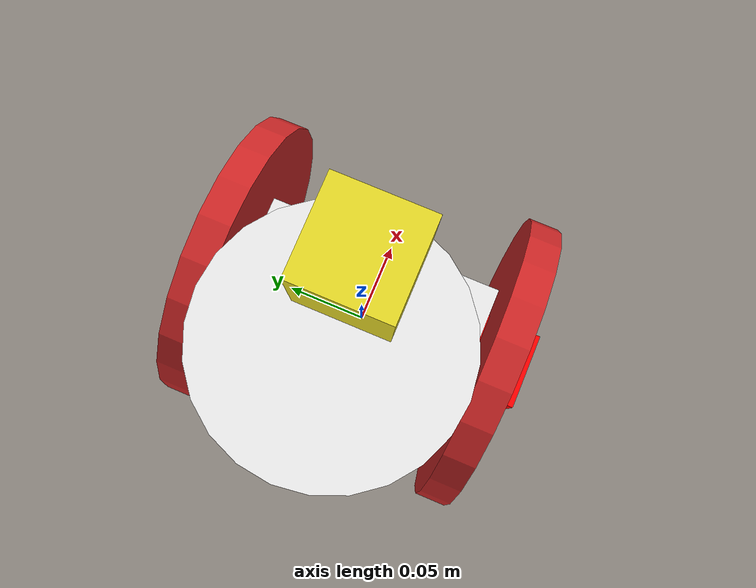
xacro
<?xml version="1.0"?>
<robot name="tbot" xmlns:xacro="http://www.ros.org/wiki/xacro">

  <!-- Included URDF/XACRO Files -->
  <xacro:include filename="$(find tbot)/urdf/common.urdf.xacro" />
  <xacro:include filename="$(find tbot)/urdf/wheel.urdf.xacro" />
  <xacro:include filename="$(find tbot)/urdf/caster.urdf.xacro" />
  <xacro:include filename="$(find tbot)/urdf/lidar.urdf.xacro" />

  <!-- base_footprint Definition -->
  <link name="base_footprint" />

  <!-- base Definition -->
  <link name="base_link">
    <origin xyz="0 0 0" rpy="0 0 0"/>
    <visual>
      <geometry>
        <box size="0.069 0.138 0.050"/>
      </geometry>
      <material name="White" />
    </visual>
    <inertial>
      <mass value="0.2" />
      <origin xyz="0 0 0" rpy="0 0 0" />
      <xacro:box_inertia m="0.2" x="0.069" y="0.138" z="0.050" />
    </inertial>
  </link>

  <gazebo reference="base_link">
    <material>Gazebo/White</material>
    <turnGravityOff>false</turnGravityOff>
  </gazebo>

  <joint name="base_joint" type="fixed">
    <origin xyz="0 0 0.045" rpy="0 0 0" />
    <parent link="base_footprint" />
    <child  link="base_link" />
  </joint>

  <!-- body Definition -->
  <link name="body_link">
    <origin xyz="0 0 0" rpy="0 0 0"/>
    <visual>
      <geometry>
        <cylinder radius="0.069" length="0.122" />
      </geometry>
      <material name="White" />
    </visual>
    <inertial>
      <mass value="0.3" />
      <origin xyz="0 0 0" rpy="0 0 0" />
        <xacro:cylinder_inertia  m="0.3" r="0.069" h="0.122" />
    </inertial>
  </link>

  <gazebo reference="body_link">
    <material>Gazebo/White</material>
    <turnGravityOff>false</turnGravityOff>
  </gazebo>

  <joint name="body_joint" type="fixed">
    <origin xyz="-0.036 0 0.081" rpy="0 0 0" />
    <parent link="base_footprint" />
    <child  link="body_link" />
  </joint>

  <!-- Wheel Definitions -->
  <xacro:wheel sub="l" parent="base_footprint"
    transX="0" transY="0.080"  transZ="0.033" />
  <xacro:wheel sub="r" parent="base_footprint"
    transX="0" transY="-0.080"  transZ="0.033" />

  <!-- Caster Definition -->
  <xacro:caster sub="0" parent="base_footprint"
    transX="-0.080" transY="0" transZ="0.020" />

  <!-- Sensor Definition -->
  <xacro:lidar sub="0" parent="base_footprint"
    transX="0" transY="0" transZ="0.167" />

  <!-- Differential drive controller  -->
  <gazebo>
    <plugin name="differential_drive_controller"
      filename="libgazebo_ros_diff_drive.so">
      <commandTopic>cmd_vel</commandTopic>
      <odometryTopic>odom</odometryTopic>
      <odometryFrame>odom</odometryFrame>
      <odometrySource>world</odometrySource>
      <robotBaseFrame>base_footprint</robotBaseFrame>
      <publishOdomTF>true</publishOdomTF>
      <publishWheelTF>false</publishWheelTF>
      <publishTf>1</publishTf>
      <publishWheelJointState>false</publishWheelJointState>
      <legacyMode>false</legacyMode>
      <updateRate>30</updateRate>
      <leftJoint>wheel_l_joint</leftJoint>
      <rightJoint>wheel_r_joint</rightJoint>
      <wheelSeparation>0.160</wheelSeparation>
      <wheelDiameter>0.066</wheelDiameter>
      <wheelAcceleration>1.8</wheelAcceleration>
      <wheelTorque>10</wheelTorque>
      <rosDebugLevel>Debug</rosDebugLevel>
    </plugin>
  </gazebo>

</robot>

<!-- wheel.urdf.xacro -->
<robot name="wheel" xmlns:xacro="http://www.ros.org/wiki/xacro">

  <!-- Wheels -->
  <xacro:property name="wheel_radius" value="0.088" /> <!-- in m -->
  <xacro:property name="wheel_width"  value="0.018" /> <!-- in m -->
  <xacro:property name="wheel_mass"   value="3.100" /> <!-- in kg-->

  <xacro:macro name="wheel" params="sub parent transX transY transZ">
    <!-- sub: l,r 0,1,2,3 etc -->
    <!-- parent: parent link name -->
    <!-- transX transY transZ: xyz position -->

    <link name="wheel_${sub}">
      <visual>
        <origin xyz="0 0 0" rpy="${M_PI/2} 0 0" />
        <geometry>
          <cylinder length="${wheel_width}" radius="${wheel_radius}" />
        </geometry>
        <material name="Red" />
      </visual>
      <collision>
        <origin xyz="0 0 0" rpy="${M_PI/2} 0 0" />
        <geometry>
          <cylinder radius="${wheel_radius}" length="${wheel_width}" />
        </geometry>
      </collision>
      <inertial>
        <mass value="${wheel_mass}" />
        <origin xyz="0 0 0" />
        <xacro:cylinder_inertia  m="${wheel_mass}"
          r="${wheel_radius}" h="${wheel_width}" />
      </inertial>
    </link>

    <gazebo reference="wheel_${sub}">
      <material>Gazebo/Red</material>
      <turnGravityOff>false</turnGravityOff>
      <mu1 value="10000.0"/>
      <mu2 value="10000.0"/>
      <kp  value="1000000.0" />
      <kd  value="100.0" />
      <fdir1 value="1 1 0"/>
    </gazebo>

    <joint name="wheel_${sub}_joint" type="continuous">
      <parent link="${parent}"/>
      <child link="wheel_${sub}"/>
      <origin xyz="${transX} ${transY} ${transZ}" rpy="0 0 0" />
      <axis xyz="0 1 0"/>
      <limit effort="1000" velocity="100"/>
      <joint_properties damping="0.0" friction="0.0"/>
    </joint>

    <link name="${sub}_box_link">
      <inertial>
        <origin xyz="0.0 0.0 0.0" rpy="0.0 0.0 0.0"/>
        <mass value="0.0"/>
        <inertia ixx="0.0" ixy="0.0" ixz="0.0" iyy="0.0" iyz="0.0" izz="0.0"/>
      </inertial>
      <visual name="">
        <origin xyz="0.0 0.0 0.0" rpy="0.0 0.0 0.0"/>
        <geometry>
          <box size="${wheel_radius/2} ${wheel_radius/2} ${wheel_radius/2}"/>
        </geometry>
        <material name="">
          <color rgba="1.0 0.0 0.0 1.0"/>
          <texture filename=""/>
        </material>
      </visual>
      <collision>
        <origin xyz="0.0 0.0 0.0" rpy="0.0 0.0 0.0"/>
        <geometry>
          <box size="0.0 0.0 0.0"/>
        </geometry>
      </collision>
    </link>

    <joint name="${sub}_box_joint" type="fixed">
      <parent link="wheel_${sub}"/>
      <child link="${sub}_box_link"/>
      <origin xyz="0 0 0" rpy="0 0 0" />

    </joint>

  </xacro:macro>
</robot>

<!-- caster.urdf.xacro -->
<robot name="caster" xmlns:xacro="http://www.ros.org/wiki/xacro">

  <!-- Casters -->
  <xacro:property name="caster_radius" value="0.018" /> <!-- in m -->
  <xacro:property name="caster_mass"   value="0.100" /> <!-- in kg-->

  <xacro:macro name="caster" params="sub parent transX transY transZ">
    <!-- sub: l,r 0,1,2,3 etc -->
    <!-- parent: parent link name -->
    <!-- transX transY transZ: xyz position -->

    <link name="caster_${sub}">
      <visual>
        <origin xyz="0 0 0" rpy="0 0 0" />
        <geometry>
          <sphere radius="${caster_radius}" />
        </geometry>
        <material name="Black" />
      </visual>
      <collision>
        <origin xyz="0 0 0" rpy="0 0 0" />
        <geometry>
          <sphere radius="${caster_radius}" />
        </geometry>
      </collision>
      <inertial>
        <mass value="${caster_mass}" />
        <origin xyz="0 0 0" />
        <xacro:sphere_inertia m="${caster_mass}" r="${caster_radius}" />
      </inertial>
    </link>

    <gazebo reference="caster_${sub}">
      <turnGravityOff>false</turnGravityOff>
      <material>Gazebo/Black</material>
      <mu1 value="0.0"/>
      <mu2 value="0.0"/>
    </gazebo>

    <joint name="caster_${sub}_joint" type="fixed">
      <parent link="${parent}"/>
      <child link="caster_${sub}"/>
      <origin xyz="${transX} ${transY} ${transZ}" rpy="0 0 0" />
    </joint>

  </xacro:macro>
</robot>

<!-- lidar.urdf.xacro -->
<robot name="lidar" xmlns:xacro="http://www.ros.org/wiki/xacro">

  <!-- Lidar sensors -->
  <xacro:property name="lidar_size" value="0.050" /> <!-- in m -->
  <xacro:property name="lidar_mass" value="100.160" /> <!-- in kg-->

  <xacro:macro name="lidar" params="sub parent transX transY transZ">
    <!-- sub: l,r 0,1,2,3 etc -->
    <!-- parent: parent link name -->
    <!-- transX transY transZ: xyz position -->

    <link name="lidar_${sub}">
      <visual>
        <origin xyz="0 0 0" rpy="0 0 0" />
        <geometry>
          <box size="${lidar_size} ${lidar_size} ${lidar_size}" />
        </geometry>
        <material name="Yellow" />
      </visual>
    </link>

    <joint name="lidar_${sub}_joint" type="fixed">
      <origin xyz="${transX} ${transY} ${transZ}" rpy="0 0 0" />
      <parent link="${parent}"/>
      <child link="lidar_${sub}"/>
    </joint>

    <gazebo reference="lidar_${sub}">
      <material>Gazebo/Yellow</material>
      <turnGravityOff>false</turnGravityOff>
      <sensor type="ray" name="lidar_${sub}_sensor">
        <pose>${lidar_size/2} 0 0 0 0 0</pose>
        <visualize>true</visualize>
        <update_rate>40</update_rate>
        <ray>
          <scan>
            <horizontal>
              <samples>640</samples>
              <resolution>1</resolution>
              <min_angle>-2.094395</min_angle>
              <max_angle>2.094395</max_angle>
            </horizontal>
          </scan>
          <range>
            <min>0.10</min>
            <max>5.0</max>
            <resolution>0.01</resolution>
          </range>
        </ray>
        <plugin name="gazebo_ros_head_hokuyo_controller"
          filename="libgazebo_ros_laser.so">
          <topicName>/scan</topicName>
          <frameName>lidar_${sub}</frameName>
        </plugin>
      </sensor>
    </gazebo>
  </xacro:macro>
</robot>
